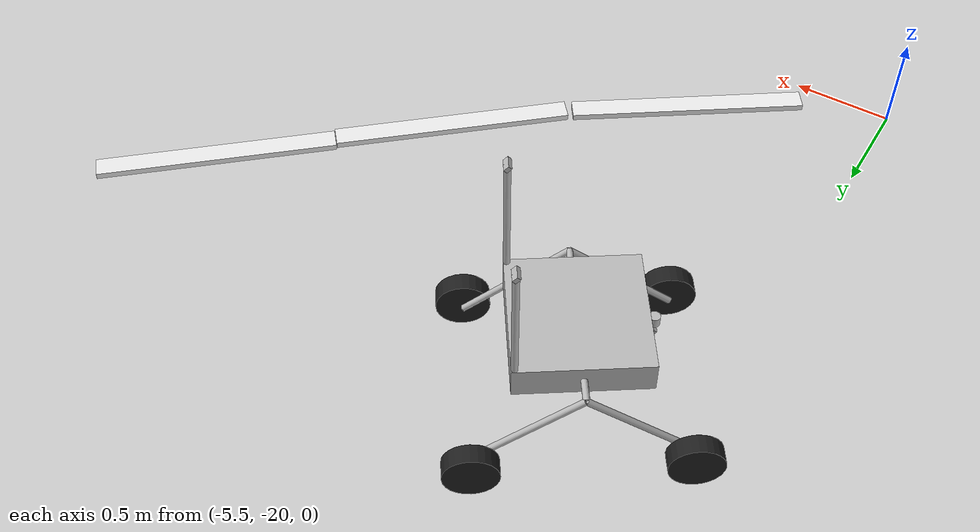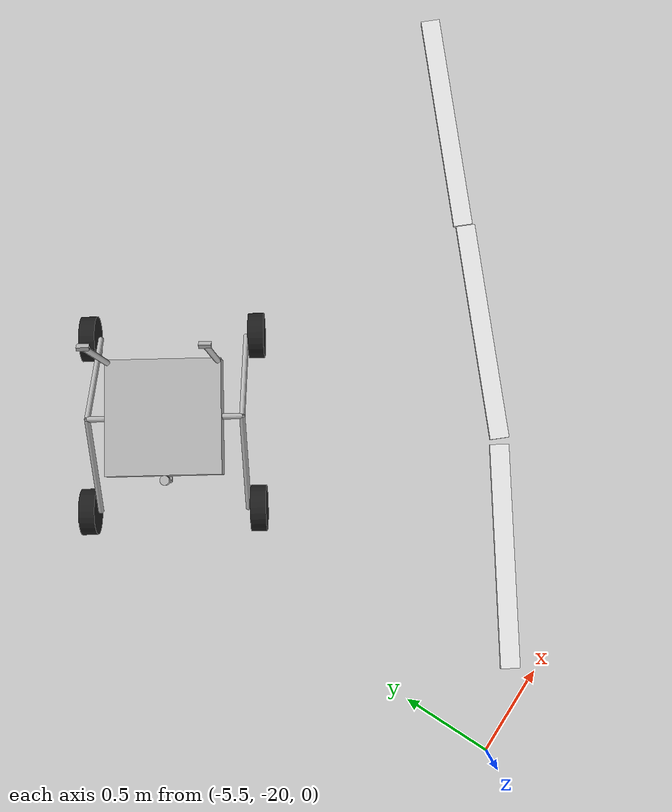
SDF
<sdf version="1.7">
 <world name="default">
  <model name="ground_plane">
   <static>1</static>
   <link name="link">
    <collision name="collision">
     <geometry><plane><normal>0 0 1</normal><size>100 100</size></plane></geometry>
     <surface><friction><ode><mu>100</mu><mu2>50</mu2></ode></friction></surface>
    </collision>
    <visual name="visual">
     <cast_shadows>0</cast_shadows>
     <geometry><plane><normal>0 0 1</normal><size>100 100</size></plane></geometry>
     <material>
      <script><uri>file://media/materials/scripts/gazebo.material</uri><name>Gazebo/Grey</name></script>
     </material>
    </visual>
   </link>
  </model>
  <model name="road_way_1_clone_clone_clone_0_clone_0_clone_clone_1_clone_clone">
   <link name="link">
    <inertial>
     <mass>1</mass>
     <inertia>
      <ixx>0.166667</ixx>
      <ixy>0</ixy>
      <ixz>0</ixz>
      <iyy>0.166667</iyy>
      <iyz>0</iyz>
      <izz>0.166667</izz>
     </inertia>
    </inertial>
    <visual name="visual">
     <geometry><box><size>0.106644 1.22348 0.03129</size></box></geometry>
     <material>
      <script><name>Gazebo/White</name><uri>file://media/materials/scripts/gazebo.material</uri></script>
      <shader type="pixel"><normal_map>__default__</normal_map></shader>
      <ambient>1 1 1 1</ambient>
      <diffuse>1 1 1 1</diffuse>
      <specular>0 0 0 1</specular>
      <emissive>0 0 0 1</emissive>
     </material>
    </visual>
    <collision name="collision">
     <geometry><box><size>0.10644 1.22348 0.03129</size></box></geometry>
     <surface>
      <friction>
       <ode><mu>1</mu><mu2>1</mu2><fdir1>0 0 0</fdir1><slip1>0</slip1><slip2>0</slip2></ode>
       <torsional>
        <coefficient>1</coefficient>
        <patch_radius>0</patch_radius>
        <surface_radius>0</surface_radius>
        <use_patch_radius>1</use_patch_radius>
        <ode><slip>0</slip></ode>
       </torsional>
      </friction>
      <bounce><restitution_coefficient>0</restitution_coefficient><threshold>1e+06</threshold></bounce>
      <contact>
       <collide_without_contact>0</collide_without_contact>
       <collide_without_contact_bitmask>1</collide_without_contact_bitmask>
       <collide_bitmask>1</collide_bitmask>
       <ode>
        <soft_cfm>0</soft_cfm>
        <soft_erp>0.2</soft_erp>
        <kp>1e+13</kp>
        <kd>1</kd>
        <max_vel>0.01</max_vel>
        <min_depth>0</min_depth>
       </ode>
       <bullet>
        <split_impulse>1</split_impulse>
        <split_impulse_penetration_threshold>-0.01</split_impulse_penetration_threshold>
        <soft_cfm>0</soft_cfm>
        <soft_erp>0.2</soft_erp>
        <kp>1e+13</kp>
        <kd>1</kd>
       </bullet>
      </contact>
     </surface>
    </collision>
   </link>
   <static>0</static>
   <pose>-4.55175 -19.5325 0.015638 1.1e-05 -0 2.1742</pose>
  </model>
  <model name="road_way_1_clone_clone_clone_0_clone_0_clone_clone_1_clone_clone_0">
   <link name="link">
    <inertial>
     <mass>1</mass>
     <inertia>
      <ixx>0.166667</ixx>
      <ixy>0</ixy>
      <ixz>0</ixz>
      <iyy>0.166667</iyy>
      <iyz>0</iyz>
      <izz>0.166667</izz>
     </inertia>
    </inertial>
    <visual name="visual">
     <geometry><box><size>0.106644 1.22348 0.03129</size></box></geometry>
     <material>
      <script><name>Gazebo/White</name><uri>file://media/materials/scripts/gazebo.material</uri></script>
      <shader type="pixel"><normal_map>__default__</normal_map></shader>
      <ambient>1 1 1 1</ambient>
      <diffuse>1 1 1 1</diffuse>
      <specular>0 0 0 1</specular>
      <emissive>0 0 0 1</emissive>
     </material>
    </visual>
    <collision name="collision">
     <geometry><box><size>0.10644 1.22348 0.03129</size></box></geometry>
     <surface>
      <friction>
       <ode><mu>1</mu><mu2>1</mu2><fdir1>0 0 0</fdir1><slip1>0</slip1><slip2>0</slip2></ode>
       <torsional>
        <coefficient>1</coefficient>
        <patch_radius>0</patch_radius>
        <surface_radius>0</surface_radius>
        <use_patch_radius>1</use_patch_radius>
        <ode><slip>0</slip></ode>
       </torsional>
      </friction>
      <bounce><restitution_coefficient>0</restitution_coefficient><threshold>1e+06</threshold></bounce>
      <contact>
       <collide_without_contact>0</collide_without_contact>
       <collide_without_contact_bitmask>1</collide_without_contact_bitmask>
       <collide_bitmask>1</collide_bitmask>
       <ode>
        <soft_cfm>0</soft_cfm>
        <soft_erp>0.2</soft_erp>
        <kp>1e+13</kp>
        <kd>1</kd>
        <max_vel>0.01</max_vel>
        <min_depth>0</min_depth>
       </ode>
       <bullet>
        <split_impulse>1</split_impulse>
        <split_impulse_penetration_threshold>-0.01</split_impulse_penetration_threshold>
        <soft_cfm>0</soft_cfm>
        <soft_erp>0.2</soft_erp>
        <kp>1e+13</kp>
        <kd>1</kd>
       </bullet>
      </contact>
     </surface>
    </collision>
   </link>
   <static>0</static>
   <pose>-3.55598 -18.7695 0.015638 1.1e-05 -0 2.28406</pose>
  </model>
  <model name="road_way_1_clone_clone_clone_0_clone_0_clone_clone_1_clone_clone_0_clone">
   <link name="link">
    <inertial>
     <mass>1</mass>
     <inertia>
      <ixx>0.166667</ixx>
      <ixy>0</ixy>
      <ixz>0</ixz>
      <iyy>0.166667</iyy>
      <iyz>0</iyz>
      <izz>0.166667</izz>
     </inertia>
    </inertial>
    <visual name="visual">
     <geometry><box><size>0.106644 1.22348 0.03129</size></box></geometry>
     <material>
      <script><name>Gazebo/White</name><uri>file://media/materials/scripts/gazebo.material</uri></script>
      <shader type="pixel"><normal_map>__default__</normal_map></shader>
      <ambient>1 1 1 1</ambient>
      <diffuse>1 1 1 1</diffuse>
      <specular>0 0 0 1</specular>
      <emissive>0 0 0 1</emissive>
     </material>
    </visual>
    <collision name="collision">
     <geometry><box><size>0.10644 1.22348 0.03129</size></box></geometry>
     <surface>
      <friction>
       <ode><mu>1</mu><mu2>1</mu2><fdir1>0 0 0</fdir1><slip1>0</slip1><slip2>0</slip2></ode>
       <torsional>
        <coefficient>1</coefficient>
        <patch_radius>0</patch_radius>
        <surface_radius>0</surface_radius>
        <use_patch_radius>1</use_patch_radius>
        <ode><slip>0</slip></ode>
       </torsional>
      </friction>
      <bounce><restitution_coefficient>0</restitution_coefficient><threshold>1e+06</threshold></bounce>
      <contact>
       <collide_without_contact>0</collide_without_contact>
       <collide_without_contact_bitmask>1</collide_without_contact_bitmask>
       <collide_bitmask>1</collide_bitmask>
       <ode>
        <soft_cfm>0</soft_cfm>
        <soft_erp>0.2</soft_erp>
        <kp>1e+13</kp>
        <kd>1</kd>
        <max_vel>0.01</max_vel>
        <min_depth>0</min_depth>
       </ode>
       <bullet>
        <split_impulse>1</split_impulse>
        <split_impulse_penetration_threshold>-0.01</split_impulse_penetration_threshold>
        <soft_cfm>0</soft_cfm>
        <soft_erp>0.2</soft_erp>
        <kp>1e+13</kp>
        <kd>1</kd>
       </bullet>
      </contact>
     </surface>
    </collision>
   </link>
   <static>0</static>
   <pose>-2.63606 -17.9568 0.015638 -1.1e-05 -0 2.28466</pose>
  </model>
  <model name="igvc">
   <link name="base_footprint">
    <inertial>
     <pose>-0.009142 -0 0.439011 0 -0 0</pose>
     <mass>26.8</mass>
     <inertia>
      <ixx>4.25604</ixx>
      <ixy>2.02989e-18</ixy>
      <ixz>0.38512</ixz>
      <iyy>5.14974</iyy>
      <iyz>1.46525e-17</iyz>
      <izz>4.11139</izz>
     </inertia>
    </inertial>
    <collision name="base_footprint_fixed_joint_lump__base_link_collision">
     <pose>0 0 0.505 0 -0 0</pose>
     <geometry><box><size>0.6 0.6 0.15</size></box></geometry>
    </collision>
    <collision name="base_footprint_fixed_joint_lump__gps_link_collision_1">
     <pose>0.05 0 0.505 0 -0 0</pose>
     <geometry><cylinder><length>0.02</length><radius>0.01</radius></cylinder></geometry>
    </collision>
    <collision name="base_footprint_fixed_joint_lump__imu_link_collision_2">
     <pose>0 0 0.505 0 -0 0</pose>
     <geometry><cylinder><length>0.02</length><radius>0.01</radius></cylinder></geometry>
    </collision>
    <collision name="base_footprint_fixed_joint_lump__laser_link_collision_3">
     <pose>0.325 0 0.505 0 -0 0</pose>
     <geometry><cylinder><length>0.05</length><radius>0.025</radius></cylinder></geometry>
    </collision>
    <collision name="base_footprint_fixed_joint_lump__front_camera_collision_4">
     <pose>0.32 0 0.45 0 0.682 0</pose>
     <geometry><box><size>0.02 0.06 0.03</size></box></geometry>
    </collision>
    <collision name="base_footprint_fixed_joint_lump__left_camera_holder_collision_5">
     <pose>-0.285 0.285 0.88 0 -0 0</pose>
     <geometry><cylinder><length>0.6</length><radius>0.015</radius></cylinder></geometry>
    </collision>
    <collision name="base_footprint_fixed_joint_lump__left_camera_collision_6">
     <pose>-0.285 0.285 1.18 0 0.762 0</pose>
     <geometry><box><size>0.02 0.06 0.03</size></box></geometry>
    </collision>
    <collision name="base_footprint_fixed_joint_lump__left_diff_holder_collision_7">
     <pose>0 0.35125 0.505 1.5708 -0 0</pose>
     <geometry><cylinder><length>0.1025</length><radius>0.015</radius></cylinder></geometry>
    </collision>
    <collision name="base_footprint_fixed_joint_lump__front_left_wheel_holder_collision_8">
     <pose>0.2375 0.4025 0.315 0 -0.896 0</pose>
     <geometry><cylinder><length>0.608</length><radius>0.015</radius></cylinder></geometry>
    </collision>
    <collision name="base_footprint_fixed_joint_lump__rear_left_wheel_holder_collision_9">
     <pose>-0.2375 0.4025 0.315 0 0.896 0</pose>
     <geometry><cylinder><length>0.608</length><radius>0.015</radius></cylinder></geometry>
    </collision>
    <collision name="base_footprint_fixed_joint_lump__right_camera_holder_collision_10">
     <pose>-0.285 -0.285 0.88 0 -0 0</pose>
     <geometry><cylinder><length>0.6</length><radius>0.015</radius></cylinder></geometry>
    </collision>
    <collision name="base_footprint_fixed_joint_lump__right_camera_collision_11">
     <pose>-0.285 -0.285 1.18 0 0.762 0</pose>
     <geometry><box><size>0.02 0.06 0.03</size></box></geometry>
    </collision>
    <collision name="base_footprint_fixed_joint_lump__right_diff_holder_collision_12">
     <pose>0 -0.35125 0.505 1.5708 -0 0</pose>
     <geometry><cylinder><length>0.1025</length><radius>0.015</radius></cylinder></geometry>
    </collision>
    <collision name="base_footprint_fixed_joint_lump__front_right_wheel_holder_collision_13">
     <pose>0.2375 -0.4025 0.315 0 -0.896 0</pose>
     <geometry><cylinder><length>0.608</length><radius>0.015</radius></cylinder></geometry>
    </collision>
    <collision name="base_footprint_fixed_joint_lump__rear_right_wheel_holder_collision_14">
     <pose>-0.2375 -0.4025 0.315 0 0.896 0</pose>
     <geometry><cylinder><length>0.608</length><radius>0.015</radius></cylinder></geometry>
    </collision>
    <visual name="base_footprint_fixed_joint_lump__base_link_visual">
     <pose>0 0 0.505 0 -0 0</pose>
     <geometry><box><size>0.6 0.6 0.15</size></box></geometry>
    </visual>
    <visual name="base_footprint_fixed_joint_lump__gps_link_visual_1">
     <pose>0.05 0 0.505 0 -0 0</pose>
     <geometry><cylinder><length>0.02</length><radius>0.01</radius></cylinder></geometry>
    </visual>
    <visual name="base_footprint_fixed_joint_lump__imu_link_visual_2">
     <pose>0 0 0.505 0 -0 0</pose>
     <geometry><cylinder><length>0.02</length><radius>0.01</radius></cylinder></geometry>
    </visual>
    <visual name="base_footprint_fixed_joint_lump__laser_link_visual_3">
     <pose>0.325 0 0.505 0 -0 0</pose>
     <geometry><cylinder><length>0.05</length><radius>0.025</radius></cylinder></geometry>
    </visual>
    <visual name="base_footprint_fixed_joint_lump__front_camera_visual_4">
     <pose>0.32 0 0.45 0 0.682 0</pose>
     <geometry><box><size>0.02 0.06 0.03</size></box></geometry>
    </visual>
    <visual name="base_footprint_fixed_joint_lump__left_camera_holder_visual_5">
     <pose>-0.285 0.285 0.88 0 -0 0</pose>
     <geometry><cylinder><length>0.6</length><radius>0.015</radius></cylinder></geometry>
    </visual>
    <visual name="base_footprint_fixed_joint_lump__left_camera_visual_6">
     <pose>-0.285 0.285 1.18 0 0.762 0</pose>
     <geometry><box><size>0.02 0.06 0.03</size></box></geometry>
    </visual>
    <visual name="base_footprint_fixed_joint_lump__left_diff_holder_visual_7">
     <pose>0 0.35125 0.505 1.5708 -0 0</pose>
     <geometry><cylinder><length>0.1025</length><radius>0.015</radius></cylinder></geometry>
    </visual>
    <visual name="base_footprint_fixed_joint_lump__front_left_wheel_holder_visual_8">
     <pose>0.2375 0.4025 0.315 0 -0.896 0</pose>
     <geometry><cylinder><length>0.608</length><radius>0.015</radius></cylinder></geometry>
    </visual>
    <visual name="base_footprint_fixed_joint_lump__rear_left_wheel_holder_visual_9">
     <pose>-0.2375 0.4025 0.315 0 0.896 0</pose>
     <geometry><cylinder><length>0.608</length><radius>0.015</radius></cylinder></geometry>
    </visual>
    <visual name="base_footprint_fixed_joint_lump__right_camera_holder_visual_10">
     <pose>-0.285 -0.285 0.88 0 -0 0</pose>
     <geometry><cylinder><length>0.6</length><radius>0.015</radius></cylinder></geometry>
    </visual>
    <visual name="base_footprint_fixed_joint_lump__right_camera_visual_11">
     <pose>-0.285 -0.285 1.18 0 0.762 0</pose>
     <geometry><box><size>0.02 0.06 0.03</size></box></geometry>
    </visual>
    <visual name="base_footprint_fixed_joint_lump__right_diff_holder_visual_12">
     <pose>0 -0.35125 0.505 1.5708 -0 0</pose>
     <geometry><cylinder><length>0.1025</length><radius>0.015</radius></cylinder></geometry>
    </visual>
    <visual name="base_footprint_fixed_joint_lump__front_right_wheel_holder_visual_13">
     <pose>0.2375 -0.4025 0.315 0 -0.896 0</pose>
     <geometry><cylinder><length>0.608</length><radius>0.015</radius></cylinder></geometry>
    </visual>
    <visual name="base_footprint_fixed_joint_lump__rear_right_wheel_holder_visual_14">
     <pose>-0.2375 -0.4025 0.315 0 0.896 0</pose>
     <geometry><cylinder><length>0.608</length><radius>0.015</radius></cylinder></geometry>
    </visual>
    <sensor name="lidar" type="ray">
     <always_on>1</always_on>
     <visualize>0</visualize>
     <update_rate>5</update_rate>
     <ray>
      <scan>
       <horizontal>
        <samples>360</samples>
        <resolution>1</resolution>
        <min_angle>-1.57079</min_angle>
        <max_angle>1.57079</max_angle>
       </horizontal>
       <vertical><samples>1</samples><min_angle>0</min_angle><max_angle>0</max_angle></vertical>
      </scan>
      <range><min>0.12</min><max>12</max><resolution>0.05</resolution></range>
      <noise><type>gaussian</type><mean>0</mean><stddev>0.01</stddev></noise>
     </ray>
     <plugin name="scan" filename="libgazebo_ros_ray_sensor.so">
      <ros><remapping>~/out:=scan</remapping><use_sim_time>1</use_sim_time></ros>
      <output_type>sensor_msgs/LaserScan</output_type>
      <frame_name>laser_link</frame_name>
     </plugin>
     <pose>0.325 0 0.505 0 -0 0</pose>
    </sensor>
    <sensor name="front_camera" type="camera">
     <update_rate>8</update_rate>
     <camera name="front_camera">
      <horizontal_fov>0.682</horizontal_fov>
      <image><width>240</width><height>320</height><format>R8G8B8</format></image>
      <clip><near>0.02</near><far>10</far></clip>
      <noise><type>gaussian</type><mean>0</mean><stddev>0.007</stddev></noise>
     </camera>
     <visualize>0</visualize>
     <plugin name="front_camera_controller" filename="libgazebo_ros_camera.so">
      <alwaysOn>1</alwaysOn>
      <updateRate>0.0</updateRate>
      <cameraName>front_camera</cameraName>
      <imageTopicName>front_camera_raw_image</imageTopicName>
      <cameraInfoTopicName>front_camera_info</cameraInfoTopicName>
      <frameName>front_camera</frameName>
      <hackBaseline>0.07</hackBaseline>
      <distortionK1>0.0</distortionK1>
      <distortionK2>0.0</distortionK2>
      <distortionK3>0.0</distortionK3>
      <distortionT1>0.0</distortionT1>
      <distortionT2>0.0</distortionT2>
     </plugin>
     <pose>0.32 0 0.45 0 0.682 0</pose>
    </sensor>
    <sensor name="left_camera" type="camera">
     <update_rate>8</update_rate>
     <camera name="left_camera">
      <horizontal_fov>0.9</horizontal_fov>
      <image><width>480</width><height>640</height><format>R8G8B8</format></image>
      <clip><near>0.02</near><far>300</far></clip>
      <noise><type>gaussian</type><mean>0</mean><stddev>0.007</stddev></noise>
     </camera>
     <visualize>0</visualize>
     <plugin name="left_camera_controller" filename="libgazebo_ros_camera.so">
      <alwaysOn>1</alwaysOn>
      <updateRate>0.0</updateRate>
      <cameraName>left_camera</cameraName>
      <imageTopicName>left_camera_raw_image</imageTopicName>
      <cameraInfoTopicName>left_camera_info</cameraInfoTopicName>
      <frameName>left_camera</frameName>
      <hackBaseline>0.07</hackBaseline>
      <distortionK1>0.0</distortionK1>
      <distortionK2>0.0</distortionK2>
      <distortionK3>0.0</distortionK3>
      <distortionT1>0.0</distortionT1>
      <distortionT2>0.0</distortionT2>
     </plugin>
     <pose>-0.285 0.285 1.18 0 0.762 0</pose>
    </sensor>
    <sensor name="right_camera" type="camera">
     <update_rate>8</update_rate>
     <camera name="right_camera">
      <horizontal_fov>0.9</horizontal_fov>
      <image><width>480</width><height>640</height><format>R8G8B8</format></image>
      <clip><near>0.02</near><far>300</far></clip>
      <noise><type>gaussian</type><mean>0</mean><stddev>0.007</stddev></noise>
     </camera>
     <visualize>0</visualize>
     <plugin name="right_camera_controller" filename="libgazebo_ros_camera.so">
      <alwaysOn>1</alwaysOn>
      <updateRate>0.0</updateRate>
      <cameraName>right_camera</cameraName>
      <imageTopicName>right_camera_raw_image</imageTopicName>
      <cameraInfoTopicName>right_camera_info</cameraInfoTopicName>
      <frameName>right_camera</frameName>
      <hackBaseline>0.07</hackBaseline>
      <distortionK1>0.0</distortionK1>
      <distortionK2>0.0</distortionK2>
      <distortionK3>0.0</distortionK3>
      <distortionT1>0.0</distortionT1>
      <distortionT2>0.0</distortionT2>
     </plugin>
     <pose>-0.285 -0.285 1.18 0 0.762 0</pose>
    </sensor>
   </link>
   <joint name="front_left_wheel_joint" type="revolute">
    <pose relative_to="base_footprint">0.475 0.46 0.125 0 -0 0</pose>
    <parent>base_footprint</parent>
    <child>front_left_wheel</child>
    <axis>
     <xyz>0 1 0</xyz>
     <limit><effort>10000</effort><velocity>1000</velocity><lower>-1e+16</lower><upper>1e+16</upper></limit>
     <dynamics><spring_reference>0</spring_reference><spring_stiffness>0</spring_stiffness></dynamics>
    </axis>
   </joint>
   <link name="front_left_wheel">
    <pose relative_to="front_left_wheel_joint">0 0 0 0 -0 0</pose>
    <inertial>
     <mass>1.2</mass>
     <inertia><ixx>0.00541</ixx><ixy>0</ixy><ixz>0</ixz><iyy>0.00541</iyy><iyz>0</iyz><izz>0.009375</izz></inertia>
    </inertial>
    <collision name="front_left_wheel_collision">
     <pose>0 0 0 1.5708 -0 0</pose>
     <geometry><cylinder><length>0.085</length><radius>0.125</radius></cylinder></geometry>
    </collision>
    <visual name="front_left_wheel_visual">
     <pose>0 0 0 1.5708 -0 0</pose>
     <geometry><cylinder><length>0.085</length><radius>0.125</radius></cylinder></geometry>
     <material>
      <script><name>Gazebo/Black</name><uri>file://media/materials/scripts/gazebo.material</uri></script>
     </material>
    </visual>
   </link>
   <joint name="rear_left_wheel_joint" type="revolute">
    <pose relative_to="base_footprint">-0.475 0.46 0.125 0 -0 0</pose>
    <parent>base_footprint</parent>
    <child>rear_left_wheel</child>
    <axis>
     <xyz>0 1 0</xyz>
     <limit><effort>10000</effort><velocity>1000</velocity><lower>-1e+16</lower><upper>1e+16</upper></limit>
     <dynamics><spring_reference>0</spring_reference><spring_stiffness>0</spring_stiffness></dynamics>
    </axis>
   </joint>
   <link name="rear_left_wheel">
    <pose relative_to="rear_left_wheel_joint">0 0 0 0 -0 0</pose>
    <inertial>
     <mass>1.2</mass>
     <inertia><ixx>0.00541</ixx><ixy>0</ixy><ixz>0</ixz><iyy>0.00541</iyy><iyz>0</iyz><izz>0.009375</izz></inertia>
    </inertial>
    <collision name="rear_left_wheel_collision">
     <pose>0 0 0 1.5708 -0 0</pose>
     <geometry><cylinder><length>0.085</length><radius>0.125</radius></cylinder></geometry>
    </collision>
    <visual name="rear_left_wheel_visual">
     <pose>0 0 0 1.5708 -0 0</pose>
     <geometry><cylinder><length>0.085</length><radius>0.125</radius></cylinder></geometry>
     <material>
      <script><name>Gazebo/Black</name><uri>file://media/materials/scripts/gazebo.material</uri></script>
     </material>
    </visual>
   </link>
   <joint name="front_right_wheel_joint" type="revolute">
    <pose relative_to="base_footprint">0.475 -0.46 0.125 0 -0 0</pose>
    <parent>base_footprint</parent>
    <child>front_right_wheel</child>
    <axis>
     <xyz>0 1 0</xyz>
     <limit><effort>10000</effort><velocity>1000</velocity><lower>-1e+16</lower><upper>1e+16</upper></limit>
     <dynamics><spring_reference>0</spring_reference><spring_stiffness>0</spring_stiffness></dynamics>
    </axis>
   </joint>
   <link name="front_right_wheel">
    <pose relative_to="front_right_wheel_joint">0 0 0 0 -0 0</pose>
    <inertial>
     <mass>1.2</mass>
     <inertia><ixx>0.00541</ixx><ixy>0</ixy><ixz>0</ixz><iyy>0.00541</iyy><iyz>0</iyz><izz>0.009375</izz></inertia>
    </inertial>
    <collision name="front_right_wheel_collision">
     <pose>0 0 0 1.5708 -0 0</pose>
     <geometry><cylinder><length>0.085</length><radius>0.125</radius></cylinder></geometry>
    </collision>
    <visual name="front_right_wheel_visual">
     <pose>0 0 0 1.5708 -0 0</pose>
     <geometry><cylinder><length>0.085</length><radius>0.125</radius></cylinder></geometry>
     <material>
      <script><name>Gazebo/Black</name><uri>file://media/materials/scripts/gazebo.material</uri></script>
     </material>
    </visual>
   </link>
   <joint name="rear_right_wheel_joint" type="revolute">
    <pose relative_to="base_footprint">-0.475 -0.46 0.125 0 -0 0</pose>
    <parent>base_footprint</parent>
    <child>rear_right_wheel</child>
    <axis>
     <xyz>0 1 0</xyz>
     <limit><effort>10000</effort><velocity>1000</velocity><lower>-1e+16</lower><upper>1e+16</upper></limit>
     <dynamics><spring_reference>0</spring_reference><spring_stiffness>0</spring_stiffness></dynamics>
    </axis>
   </joint>
   <link name="rear_right_wheel">
    <pose relative_to="rear_right_wheel_joint">0 0 0 0 -0 0</pose>
    <inertial>
     <mass>1.2</mass>
     <inertia><ixx>0.00541</ixx><ixy>0</ixy><ixz>0</ixz><iyy>0.00541</iyy><iyz>0</iyz><izz>0.009375</izz></inertia>
    </inertial>
    <collision name="rear_right_wheel_collision">
     <pose>0 0 0 1.5708 -0 0</pose>
     <geometry><cylinder><length>0.085</length><radius>0.125</radius></cylinder></geometry>
    </collision>
    <visual name="rear_right_wheel_visual">
     <pose>0 0 0 1.5708 -0 0</pose>
     <geometry><cylinder><length>0.085</length><radius>0.125</radius></cylinder></geometry>
     <material>
      <script><name>Gazebo/Black</name><uri>file://media/materials/scripts/gazebo.material</uri></script>
     </material>
    </visual>
   </link>
   <plugin name="gazebo_ros2_control" filename="libgazebo_ros2_control.so">
    <robot_param>robot_description</robot_param>
    <robot_param_node>robot_state_publisher</robot_param_node>
    <parameters>/home/rosgeek/Documents/kayra2_ws/install/igvc_controller/share/igvc_controller/config/kayra_controllers.yaml</parameters>
   </plugin>
   <plugin name="imu_controller" filename="libhector_gazebo_ros_imu.so">
    <robotNamespace>/</robotNamespace>
    <updateRate>30.0</updateRate>
    <topicName>imu/data</topicName>
    <accelDrift>0.03 0.03 0.03</accelDrift>
    <accelGaussianNoise>0.03 0.03 0.03</accelGaussianNoise>
    <rateDrift>0.03 0.03 0.03</rateDrift>
    <rateGaussianNoise>0.03 0.03 0.03</rateGaussianNoise>
    <headingDrift>0.03</headingDrift>
    <headingGaussianNoise>0.03</headingGaussianNoise>
    <bodyName>base_footprint</bodyName>
    <xyzOffset>0 0 -0.505</xyzOffset>
    <rpyOffset>0 -0 0</rpyOffset>
   </plugin>
   <static>0</static>
   <plugin name="gps_controller" filename="libhector_gazebo_ros_gps.so">
    <updateRate>3.0</updateRate>
    <robotNamespace>/</robotNamespace>
    <frameId>gps_link</frameId>
    <topicName>gps/fix</topicName>
    <velocityTopicName>gps/vel</velocityTopicName>
    <referenceLatitude>42.67994364119384</referenceLatitude>
    <referenceLongitude>-83.2027446955107</referenceLongitude>
    <referenceAltitude>0.0</referenceAltitude>
    <referenceHeading>0.0</referenceHeading>
    <gaussianNoise>0.01 0.01 0.01</gaussianNoise>
    <drift>0.01 0.01 0.01</drift>
    <bodyName>base_footprint</bodyName>
    <xyzOffset>-0.05 0 -0.505</xyzOffset>
    <rpyOffset>0 -0 0</rpyOffset>
   </plugin>
   <pose>-4.92132 -17.6093 -5e-06 -0 -1.1e-05 -2.55023</pose>
  </model>
 </world>
</sdf>
